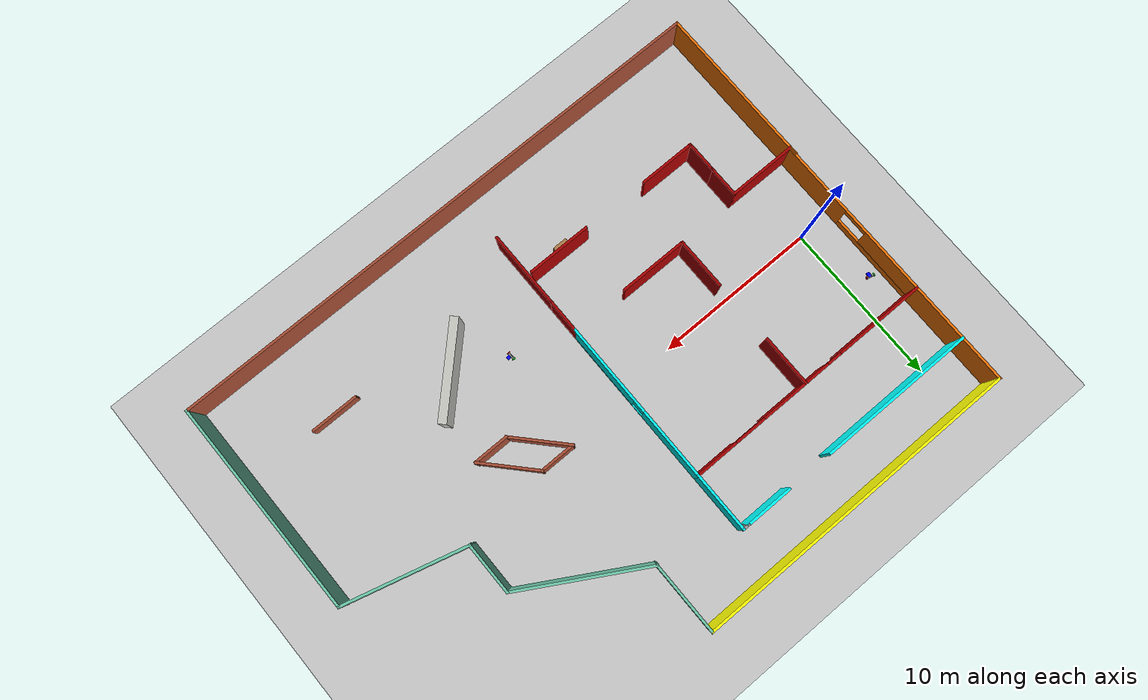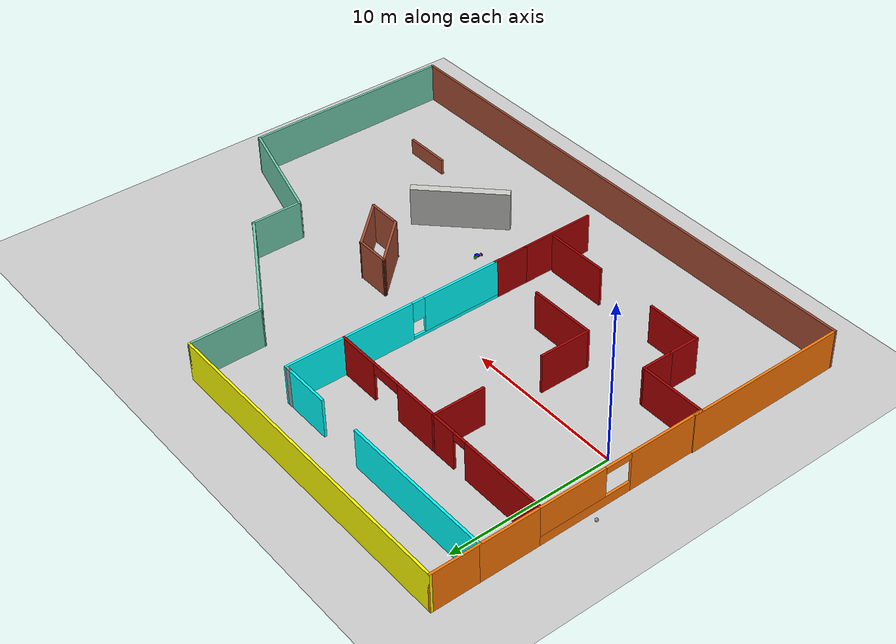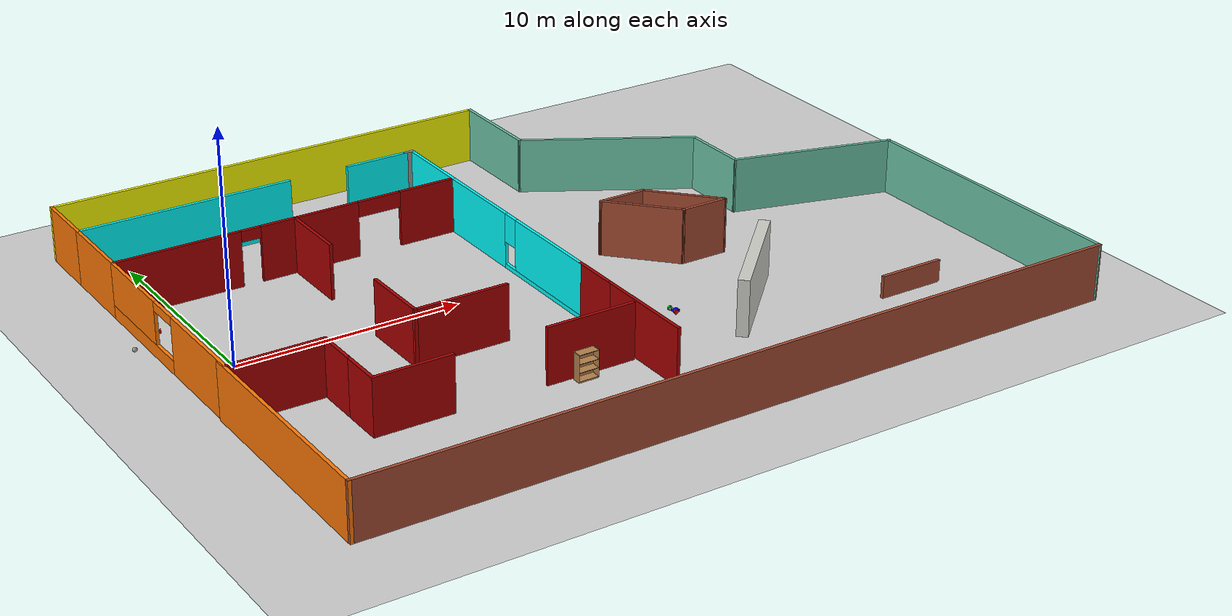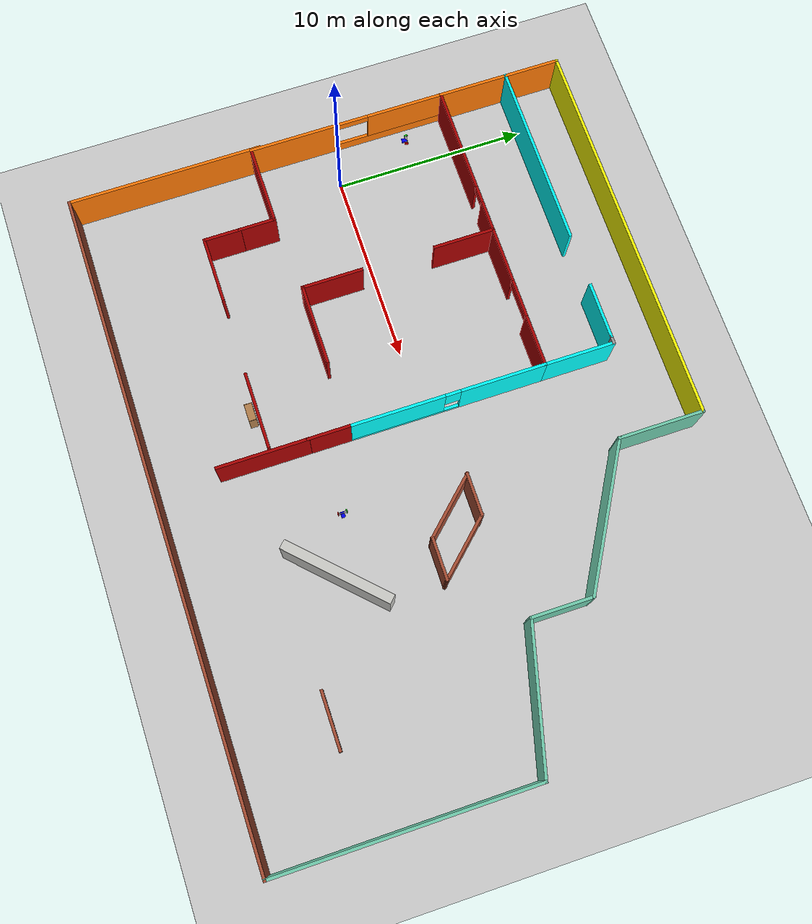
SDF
<sdf version="1.6">
 <world name="default">
  <plugin name="myhello" filename="libmyhello.so"/>
  <light name="sun" type="directional">
   <pose>0 0 10 0 -0 0</pose>
   <diffuse>0.8 0.8 0.8 1</diffuse>
   <specular>0.1 0.1 0.1 1</specular>
   <attenuation>
    <range>1000</range>
    <constant>0.9</constant>
    <linear>0.01</linear>
    <quadratic>0.001</quadratic>
   </attenuation>
   <direction>-0.5 0.5 -1</direction>
  </light>
  <model name="ground_plane">
   <static>1</static>
   <link name="link">
    <collision name="collision">
     <geometry><plane><normal>0 0 1</normal><size>100 100</size></plane></geometry>
     <surface><friction><ode><mu>100</mu><mu2>50</mu2></ode></friction></surface>
    </collision>
    <visual name="visual">
     <cast_shadows>0</cast_shadows>
     <geometry><plane><normal>0 0 1</normal><size>100 100</size></plane></geometry>
     <material>
      <script><uri>file://media/materials/scripts/gazebo.material</uri><name>Gazebo/Grey</name></script>
     </material>
    </visual>
   </link>
  </model>
  <gravity>0 0 -9.8</gravity>
  <magnetic_field>6e-06 2.3e-05 -4.2e-05</magnetic_field>
  <atmosphere type="adiabatic"/>
  <physics name="default_physics" default="0" type="ode">
   <max_step_size>0.001</max_step_size>
   <real_time_factor>1</real_time_factor>
   <real_time_update_rate>1000</real_time_update_rate>
  </physics>
  <scene><ambient>0.4 0.4 0.4 1</ambient><background>0.7 0.7 0.7 1</background><shadows>1</shadows></scene>
  <spherical_coordinates>
   <surface_model>EARTH_WGS84</surface_model>
   <latitude_deg>0</latitude_deg>
   <longitude_deg>0</longitude_deg>
   <elevation>0</elevation>
   <heading_deg>0</heading_deg>
  </spherical_coordinates>
  <model name="dummy_robot1">
   <link name="link_0">
    <pose>-0.025 0.005 0 0 -0 0</pose>
    <inertial>
     <mass>1</mass>
     <inertia>
      <ixx>0.166667</ixx>
      <ixy>0</ixy>
      <ixz>0</ixz>
      <iyy>0.166667</iyy>
      <iyz>0</iyz>
      <izz>0.166667</izz>
     </inertia>
    </inertial>
    <visual name="visual">
     <geometry><box><size>0.1 0.4 0.1</size></box></geometry>
     <material>
      <lighting>1</lighting>
      <script><uri>file://media/materials/scripts/gazebo.material</uri><name>Gazebo/Grey</name></script>
      <shader type="pixel"><normal_map>__default__</normal_map></shader>
      <ambient>1 1 1 1</ambient>
      <diffuse>1 1 1 1</diffuse>
      <specular>0.01 0.01 0.01 1</specular>
      <emissive>0 0 0 1</emissive>
     </material>
    </visual>
    <collision name="collision">
     <geometry><box><size>0.1 0.4 0.1</size></box></geometry>
     <surface>
      <friction>
       <ode><mu>1</mu><mu2>1</mu2><fdir1>0 0 0</fdir1><slip1>0</slip1><slip2>0</slip2></ode>
       <torsional>
        <coefficient>1</coefficient>
        <patch_radius>0</patch_radius>
        <surface_radius>0</surface_radius>
        <use_patch_radius>1</use_patch_radius>
        <ode><slip>0</slip></ode>
       </torsional>
      </friction>
      <bounce><restitution_coefficient>0</restitution_coefficient><threshold>1e+06</threshold></bounce>
      <contact>
       <collide_without_contact>0</collide_without_contact>
       <collide_without_contact_bitmask>1</collide_without_contact_bitmask>
       <collide_bitmask>1</collide_bitmask>
       <ode>
        <soft_cfm>0</soft_cfm>
        <soft_erp>0.2</soft_erp>
        <kp>1e+13</kp>
        <kd>1</kd>
        <max_vel>0.01</max_vel>
        <min_depth>0</min_depth>
       </ode>
       <bullet>
        <split_impulse>1</split_impulse>
        <split_impulse_penetration_threshold>-0.01</split_impulse_penetration_threshold>
        <soft_cfm>0</soft_cfm>
        <soft_erp>0.2</soft_erp>
        <kp>1e+13</kp>
        <kd>1</kd>
       </bullet>
      </contact>
     </surface>
    </collision>
   </link>
   <link name="link_1">
    <pose>-0.025 -0.22 0 1.5708 -0 0</pose>
    <inertial>
     <mass>1</mass>
     <inertia><ixx>0.145833</ixx><ixy>0</ixy><ixz>0</ixz><iyy>0.145833</iyy><iyz>0</iyz><izz>0.125</izz></inertia>
    </inertial>
    <visual name="visual">
     <geometry><cylinder><radius>0.1</radius><length>0.05</length></cylinder></geometry>
     <material>
      <lighting>1</lighting>
      <script><uri>file://media/materials/scripts/gazebo.material</uri><name>Gazebo/Grey</name></script>
      <shader type="pixel"><normal_map>__default__</normal_map></shader>
      <ambient>1 0 0 1</ambient>
      <diffuse>1 0 0 1</diffuse>
      <specular>0.01 0.01 0.01 1</specular>
      <emissive>0 0 0 1</emissive>
     </material>
    </visual>
    <collision name="collision">
     <geometry><cylinder><radius>0.1</radius><length>0.05</length></cylinder></geometry>
     <surface>
      <friction>
       <ode><mu>1</mu><mu2>1</mu2><fdir1>0 0 0</fdir1><slip1>0</slip1><slip2>0</slip2></ode>
       <torsional>
        <coefficient>1</coefficient>
        <patch_radius>0</patch_radius>
        <surface_radius>0</surface_radius>
        <use_patch_radius>1</use_patch_radius>
        <ode><slip>0</slip></ode>
       </torsional>
      </friction>
      <bounce><restitution_coefficient>0</restitution_coefficient><threshold>1e+06</threshold></bounce>
      <contact>
       <collide_without_contact>0</collide_without_contact>
       <collide_without_contact_bitmask>1</collide_without_contact_bitmask>
       <collide_bitmask>1</collide_bitmask>
       <ode>
        <soft_cfm>0</soft_cfm>
        <soft_erp>0.2</soft_erp>
        <kp>1e+13</kp>
        <kd>1</kd>
        <max_vel>0.01</max_vel>
        <min_depth>0</min_depth>
       </ode>
       <bullet>
        <split_impulse>1</split_impulse>
        <split_impulse_penetration_threshold>-0.01</split_impulse_penetration_threshold>
        <soft_cfm>0</soft_cfm>
        <soft_erp>0.2</soft_erp>
        <kp>1e+13</kp>
        <kd>1</kd>
       </bullet>
      </contact>
     </surface>
    </collision>
   </link>
   <link name="link_1_clone">
    <pose>-0.025 0.23 0 1.5708 -0 0</pose>
    <inertial>
     <mass>1</mass>
     <inertia><ixx>0.145833</ixx><ixy>0</ixy><ixz>0</ixz><iyy>0.145833</iyy><iyz>0</iyz><izz>0.125</izz></inertia>
    </inertial>
    <visual name="visual">
     <geometry><cylinder><radius>0.1</radius><length>0.05</length></cylinder></geometry>
     <material>
      <lighting>1</lighting>
      <script><uri>file://media/materials/scripts/gazebo.material</uri><name>Gazebo/Grey</name></script>
      <shader type="pixel"><normal_map>__default__</normal_map></shader>
      <ambient>0 1 0 1</ambient>
      <diffuse>0 1 0 1</diffuse>
      <specular>0.01 0.01 0.01 1</specular>
      <emissive>0 0 0 1</emissive>
     </material>
    </visual>
    <collision name="collision">
     <geometry><cylinder><radius>0.1</radius><length>0.05</length></cylinder></geometry>
     <surface>
      <friction>
       <ode><mu>1</mu><mu2>1</mu2><fdir1>0 0 0</fdir1><slip1>0</slip1><slip2>0</slip2></ode>
       <torsional>
        <coefficient>1</coefficient>
        <patch_radius>0</patch_radius>
        <surface_radius>0</surface_radius>
        <use_patch_radius>1</use_patch_radius>
        <ode><slip>0</slip></ode>
       </torsional>
      </friction>
      <bounce><restitution_coefficient>0</restitution_coefficient><threshold>1e+06</threshold></bounce>
      <contact>
       <collide_without_contact>0</collide_without_contact>
       <collide_without_contact_bitmask>1</collide_without_contact_bitmask>
       <collide_bitmask>1</collide_bitmask>
       <ode>
        <soft_cfm>0</soft_cfm>
        <soft_erp>0.2</soft_erp>
        <kp>1e+13</kp>
        <kd>1</kd>
        <max_vel>0.01</max_vel>
        <min_depth>0</min_depth>
       </ode>
       <bullet>
        <split_impulse>1</split_impulse>
        <split_impulse_penetration_threshold>-0.01</split_impulse_penetration_threshold>
        <soft_cfm>0</soft_cfm>
        <soft_erp>0.2</soft_erp>
        <kp>1e+13</kp>
        <kd>1</kd>
       </bullet>
      </contact>
     </surface>
    </collision>
   </link>
   <link name="link_2">
    <pose>0.075 -0.015 0 0 -0 0</pose>
    <inertial>
     <mass>1</mass>
     <inertia>
      <ixx>0.166667</ixx>
      <ixy>0</ixy>
      <ixz>0</ixz>
      <iyy>0.166667</iyy>
      <iyz>0</iyz>
      <izz>0.166667</izz>
     </inertia>
    </inertial>
    <visual name="visual">
     <geometry><box><size>0.3 0.2 0.1</size></box></geometry>
     <material>
      <lighting>1</lighting>
      <script><uri>file://media/materials/scripts/gazebo.material</uri><name>Gazebo/Grey</name></script>
      <shader type="pixel"><normal_map>__default__</normal_map></shader>
      <ambient>0 0 1 1</ambient>
      <diffuse>0 0 1 1</diffuse>
      <specular>0.01 0.01 0.01 1</specular>
      <emissive>0 0 0 1</emissive>
     </material>
    </visual>
    <collision name="collision">
     <geometry><box><size>0.3 0.2 0.1</size></box></geometry>
     <surface>
      <friction>
       <ode><mu>1</mu><mu2>1</mu2><fdir1>0 0 0</fdir1><slip1>0</slip1><slip2>0</slip2></ode>
       <torsional>
        <coefficient>1</coefficient>
        <patch_radius>0</patch_radius>
        <surface_radius>0</surface_radius>
        <use_patch_radius>1</use_patch_radius>
        <ode><slip>0</slip></ode>
       </torsional>
      </friction>
      <bounce><restitution_coefficient>0</restitution_coefficient><threshold>1e+06</threshold></bounce>
      <contact>
       <collide_without_contact>0</collide_without_contact>
       <collide_without_contact_bitmask>1</collide_without_contact_bitmask>
       <collide_bitmask>1</collide_bitmask>
       <ode>
        <soft_cfm>0</soft_cfm>
        <soft_erp>0.2</soft_erp>
        <kp>1e+13</kp>
        <kd>1</kd>
        <max_vel>0.01</max_vel>
        <min_depth>0</min_depth>
       </ode>
       <bullet>
        <split_impulse>1</split_impulse>
        <split_impulse_penetration_threshold>-0.01</split_impulse_penetration_threshold>
        <soft_cfm>0</soft_cfm>
        <soft_erp>0.2</soft_erp>
        <kp>1e+13</kp>
        <kd>1</kd>
       </bullet>
      </contact>
     </surface>
    </collision>
   </link>
   <joint name="link_0_JOINT_0" type="revolute">
    <parent>link_0</parent>
    <child>link_1</child>
    <axis>
     <xyz>0 0 1</xyz>
     <use_parent_model_frame>0</use_parent_model_frame>
     <limit>
      <lower>-1.79769e+308</lower>
      <upper>1.79769e+308</upper>
      <effort>-1</effort>
      <velocity>-1</velocity>
     </limit>
     <dynamics>
      <spring_reference>0</spring_reference>
      <spring_stiffness>0</spring_stiffness>
      <damping>0</damping>
     </dynamics>
    </axis>
    <physics>
     <ode><limit><cfm>0</cfm><erp>0.2</erp></limit><suspension><cfm>0</cfm><erp>0.2</erp></suspension></ode>
    </physics>
   </joint>
   <joint name="link_0_JOINT_1" type="revolute">
    <parent>link_0</parent>
    <child>link_1_clone</child>
    <axis>
     <xyz>0 0 1</xyz>
     <use_parent_model_frame>0</use_parent_model_frame>
     <limit>
      <lower>-1.79769e+308</lower>
      <upper>1.79769e+308</upper>
      <effort>-1</effort>
      <velocity>-1</velocity>
     </limit>
     <dynamics>
      <spring_reference>0</spring_reference>
      <spring_stiffness>0</spring_stiffness>
      <damping>0</damping>
     </dynamics>
    </axis>
    <physics>
     <ode><limit><cfm>0</cfm><erp>0.2</erp></limit><suspension><cfm>0</cfm><erp>0.2</erp></suspension></ode>
    </physics>
   </joint>
   <joint name="link_0_JOINT_4" type="fixed">
    <parent>link_0</parent>
    <child>link_2</child>
    <physics>
     <ode><limit><cfm>0</cfm><erp>0.2</erp></limit><suspension><cfm>0</cfm><erp>0.2</erp></suspension></ode>
    </physics>
   </joint>
   <static>0</static>
   <pose>-1.48633 4.15691 0.094895 -3.14159 0.20566 -1.78321</pose>
  </model>
  <model name="Building">
   <pose>14.9611 -0.51159 0 0 -0 0</pose>
   <link name="Wall_11">
    <pose>-17.1231 1.60417 0 0 -0 1.5708</pose>
    <visual name="Wall_11_Visual_0">
     <pose>-2.8644 0 1.25 0 -0 0</pose>
     <geometry><box><size>4.7712 0.15 2.5</size></box></geometry>
     <material>
      <script><uri>file://media/materials/scripts/gazebo.material</uri><name>Gazebo/Grey</name></script>
      <ambient>0.996078 0.47451 0.0196078 1</ambient>
     </material>
     <meta><layer>0</layer></meta>
    </visual>
    <collision name="Wall_11_Collision_0">
     <geometry><box><size>4.7712 0.15 2.5</size></box></geometry>
     <pose>-2.8644 0 1.25 0 -0 0</pose>
    </collision>
    <visual name="Wall_11_Visual_1">
     <pose>2.3856 0 0.3 0 -0 0</pose>
     <geometry><box><size>5.7288 0.15 0.6</size></box></geometry>
     <material>
      <script><uri>file://media/materials/scripts/gazebo.material</uri><name>Gazebo/Grey</name></script>
      <ambient>0.996078 0.47451 0.0196078 1</ambient>
     </material>
     <meta><layer>0</layer></meta>
    </visual>
    <collision name="Wall_11_Collision_1">
     <geometry><box><size>5.7288 0.15 0.6</size></box></geometry>
     <pose>2.3856 0 0.3 0 -0 0</pose>
    </collision>
    <visual name="Wall_11_Visual_2">
     <pose>3.1856 0 1.55 0 -0 0</pose>
     <geometry><box><size>4.1288 0.15 1.9</size></box></geometry>
     <material>
      <script><uri>file://media/materials/scripts/gazebo.material</uri><name>Gazebo/Grey</name></script>
      <ambient>0.996078 0.47451 0.0196078 1</ambient>
     </material>
     <meta><layer>0</layer></meta>
    </visual>
    <collision name="Wall_11_Collision_2">
     <geometry><box><size>4.1288 0.15 1.9</size></box></geometry>
     <pose>3.1856 0 1.55 0 -0 0</pose>
    </collision>
    <visual name="Wall_11_Visual_3">
     <pose>0.321197 0 2.3 0 -0 0</pose>
     <geometry><box><size>1.6 0.15 0.4</size></box></geometry>
     <material>
      <script><uri>file://media/materials/scripts/gazebo.material</uri><name>Gazebo/Grey</name></script>
      <ambient>0.996078 0.47451 0.0196078 1</ambient>
     </material>
     <meta><layer>0</layer></meta>
    </visual>
    <collision name="Wall_11_Collision_3">
     <geometry><box><size>1.6 0.15 0.4</size></box></geometry>
     <pose>0.321197 0 2.3 0 -0 0</pose>
    </collision>
   </link>
   <link name="Wall_12">
    <pose>-13.073 6.77928 0 0 -0 2.8e-05</pose>
    <visual name="Wall_12_Visual_0">
     <pose>-1.29124 0 1.25 0 -0 0</pose>
     <geometry><box><size>5.66751 0.15 2.5</size></box></geometry>
     <material>
      <script><uri>file://media/materials/scripts/gazebo.material</uri><name>Gazebo/Grey</name></script>
      <ambient>0.666667 0 0 1</ambient>
     </material>
     <meta><layer>0</layer></meta>
    </visual>
    <collision name="Wall_12_Collision_0">
     <geometry><box><size>5.66751 0.15 2.5</size></box></geometry>
     <pose>-1.29124 0 1.25 0 -0 0</pose>
    </collision>
    <visual name="Wall_12_Visual_1">
     <pose>3.28376 0 1.25 0 -0 0</pose>
     <geometry><box><size>1.68249 0.15 2.5</size></box></geometry>
     <material>
      <script><uri>file://media/materials/scripts/gazebo.material</uri><name>Gazebo/Grey</name></script>
      <ambient>0.666667 0 0 1</ambient>
     </material>
     <meta><layer>0</layer></meta>
    </visual>
    <collision name="Wall_12_Collision_1">
     <geometry><box><size>1.68249 0.15 2.5</size></box></geometry>
     <pose>3.28376 0 1.25 0 -0 0</pose>
    </collision>
    <visual name="Wall_12_Visual_2">
     <pose>1.99251 0 2.25 0 -0 0</pose>
     <geometry><box><size>0.9 0.15 0.5</size></box></geometry>
     <material>
      <script><uri>file://media/materials/scripts/gazebo.material</uri><name>Gazebo/Grey</name></script>
      <ambient>0.666667 0 0 1</ambient>
     </material>
     <meta><layer>0</layer></meta>
    </visual>
    <collision name="Wall_12_Collision_2">
     <geometry><box><size>0.9 0.15 0.5</size></box></geometry>
     <pose>1.99251 0 2.25 0 -0 0</pose>
    </collision>
   </link>
   <link name="Wall_13">
    <collision name="Wall_13_Collision">
     <geometry><box><size>3.25 0.15 2.5</size></box></geometry>
     <pose>0 0 1.25 0 -0 0</pose>
    </collision>
    <visual name="Wall_13_Visual">
     <pose>0 0 1.25 0 -0 0</pose>
     <geometry><box><size>3.25 0.15 2.5</size></box></geometry>
     <material>
      <script><uri>file://media/materials/scripts/gazebo.material</uri><name>Gazebo/Grey</name></script>
      <ambient>0.666667 0 0 1</ambient>
     </material>
     <meta><layer>0</layer></meta>
    </visual>
    <pose>-9.02283 5.2294 0 0 0 -1.5708</pose>
   </link>
   <link name="Wall_145">
    <collision name="Wall_145_Collision">
     <geometry><box><size>3.25 0.15 2.5</size></box></geometry>
     <pose>0 0 1.25 0 -0 0</pose>
    </collision>
    <visual name="Wall_145_Visual">
     <pose>0 0 1.25 0 -0 0</pose>
     <geometry><box><size>3.25 0.15 2.5</size></box></geometry>
     <material>
      <script><uri>file://media/materials/scripts/gazebo.material</uri><name>Gazebo/Grey</name></script>
      <ambient>0.666667 0 0 1</ambient>
     </material>
     <meta><layer>0</layer></meta>
    </visual>
    <pose>-9.02283 -1.7706 0 0 -0 1.5708</pose>
   </link>
   <link name="Wall_15">
    <pose>-5.22283 6.7794 0 0 -0 0</pose>
    <visual name="Wall_15_Visual_0">
     <pose>-2.37184 0 1.25 0 -0 0</pose>
     <geometry><box><size>3.00631 0.15 2.5</size></box></geometry>
     <material>
      <script><uri>file://media/materials/scripts/gazebo.material</uri><name>Gazebo/Grey</name></script>
      <ambient>0.666667 0 0 1</ambient>
     </material>
     <meta><layer>0</layer></meta>
    </visual>
    <collision name="Wall_15_Collision_0">
     <geometry><box><size>3.00631 0.15 2.5</size></box></geometry>
     <pose>-2.37184 0 1.25 0 -0 0</pose>
    </collision>
    <visual name="Wall_15_Visual_1">
     <pose>2.50316 0 1.25 0 -0 0</pose>
     <geometry><box><size>2.74369 0.15 2.5</size></box></geometry>
     <material>
      <script><uri>file://media/materials/scripts/gazebo.material</uri><name>Gazebo/Grey</name></script>
      <ambient>0.666667 0 0 1</ambient>
     </material>
     <meta><layer>0</layer></meta>
    </visual>
    <collision name="Wall_15_Collision_1">
     <geometry><box><size>2.74369 0.15 2.5</size></box></geometry>
     <pose>2.50316 0 1.25 0 -0 0</pose>
    </collision>
    <visual name="Wall_15_Visual_2">
     <pose>0.131312 0 2.15 0 -0 0</pose>
     <geometry><box><size>2 0.15 0.7</size></box></geometry>
     <material>
      <script><uri>file://media/materials/scripts/gazebo.material</uri><name>Gazebo/Grey</name></script>
      <ambient>0.666667 0 0 1</ambient>
     </material>
     <meta><layer>0</layer></meta>
    </visual>
    <collision name="Wall_15_Collision_2">
     <geometry><box><size>2 0.15 0.7</size></box></geometry>
     <pose>0.131312 0 2.15 0 -0 0</pose>
    </collision>
   </link>
   <link name="Wall_16">
    <pose>-1.42283 1.7294 0 0 0 -1.5708</pose>
    <visual name="Wall_16_Visual_0">
     <pose>-2.89998 0 1.25 0 -0 0</pose>
     <geometry><box><size>4.45005 0.15 2.5</size></box></geometry>
     <material>
      <script><uri>file://media/materials/scripts/gazebo.material</uri><name>Gazebo/Grey</name></script>
      <ambient>0 1 1 1</ambient>
     </material>
     <meta><layer>0</layer></meta>
    </visual>
    <collision name="Wall_16_Collision_0">
     <geometry><box><size>4.45005 0.15 2.5</size></box></geometry>
     <pose>-2.89998 0 1.25 0 -0 0</pose>
    </collision>
    <visual name="Wall_16_Visual_1">
     <pose>2.22502 0 0.1 0 -0 0</pose>
     <geometry><box><size>5.79995 0.15 0.2</size></box></geometry>
     <material>
      <script><uri>file://media/materials/scripts/gazebo.material</uri><name>Gazebo/Grey</name></script>
      <ambient>0 1 1 1</ambient>
     </material>
     <meta><layer>0</layer></meta>
    </visual>
    <collision name="Wall_16_Collision_1">
     <geometry><box><size>5.79995 0.15 0.2</size></box></geometry>
     <pose>2.22502 0 0.1 0 -0 0</pose>
    </collision>
    <visual name="Wall_16_Visual_2">
     <pose>2.62502 0 1.35 0 -0 0</pose>
     <geometry><box><size>4.99995 0.15 2.3</size></box></geometry>
     <material>
      <script><uri>file://media/materials/scripts/gazebo.material</uri><name>Gazebo/Grey</name></script>
      <ambient>0 1 1 1</ambient>
     </material>
     <meta><layer>0</layer></meta>
    </visual>
    <collision name="Wall_16_Collision_2">
     <geometry><box><size>4.99995 0.15 2.3</size></box></geometry>
     <pose>2.62502 0 1.35 0 -0 0</pose>
    </collision>
    <visual name="Wall_16_Visual_3">
     <pose>-0.274954 0 1.85 0 -0 0</pose>
     <geometry><box><size>0.8 0.15 1.3</size></box></geometry>
     <material>
      <script><uri>file://media/materials/scripts/gazebo.material</uri><name>Gazebo/Grey</name></script>
      <ambient>0 1 1 1</ambient>
     </material>
     <meta><layer>0</layer></meta>
    </visual>
    <collision name="Wall_16_Collision_3">
     <geometry><box><size>0.8 0.15 1.3</size></box></geometry>
     <pose>-0.274954 0 1.85 0 -0 0</pose>
    </collision>
   </link>
   <link name="Wall_21">
    <collision name="Wall_21_Collision">
     <geometry><box><size>4.25 0.15 2.5</size></box></geometry>
     <pose>0 0 1.25 0 -0 0</pose>
    </collision>
    <visual name="Wall_21_Visual">
     <pose>0 0 1.25 0 -0 0</pose>
     <geometry><box><size>4.25 0.15 2.5</size></box></geometry>
     <material>
      <script><uri>file://media/materials/scripts/gazebo.material</uri><name>Gazebo/Grey</name></script>
      <ambient>0.666667 0 0 1</ambient>
     </material>
     <meta><layer>0</layer></meta>
    </visual>
    <pose>-15.073 -3.57071 0 0 -0 5.5e-05</pose>
   </link>
   <link name="Wall_22">
    <collision name="Wall_22_Collision">
     <geometry><box><size>2 0.15 2.5</size></box></geometry>
     <pose>0 0 1.25 0 -0 0</pose>
    </collision>
    <visual name="Wall_22_Visual">
     <pose>0 0 1.25 0 -0 0</pose>
     <geometry><box><size>2 0.15 2.5</size></box></geometry>
     <material>
      <script><uri>file://media/materials/scripts/gazebo.material</uri><name>Gazebo/Grey</name></script>
      <ambient>0.666667 0 0 1</ambient>
     </material>
     <meta><layer>0</layer></meta>
    </visual>
    <pose>-13.0228 -4.4956 0 0 0 -1.5708</pose>
   </link>
   <link name="Wall_24">
    <collision name="Wall_24_Collision">
     <geometry><box><size>2.25 0.15 2.5</size></box></geometry>
     <pose>0 0 1.25 0 -0 0</pose>
    </collision>
    <visual name="Wall_24_Visual">
     <pose>0 0 1.25 0 -0 0</pose>
     <geometry><box><size>2.25 0.15 2.5</size></box></geometry>
     <material>
      <script><uri>file://media/materials/scripts/gazebo.material</uri><name>Gazebo/Grey</name></script>
      <ambient>0.666667 0 0 1</ambient>
     </material>
     <meta><layer>0</layer></meta>
    </visual>
    <pose>-1.42283 -4.3706 0 0 -0 1.5708</pose>
   </link>
   <link name="Wall_26">
    <collision name="Wall_26_Collision">
     <geometry><box><size>3.75 0.15 2.5</size></box></geometry>
     <pose>0 0 1.25 0 -0 0</pose>
    </collision>
    <visual name="Wall_26_Visual">
     <pose>0 0 1.25 0 -0 0</pose>
     <geometry><box><size>3.75 0.15 2.5</size></box></geometry>
     <material>
      <script><uri>file://media/materials/scripts/gazebo.material</uri><name>Gazebo/Grey</name></script>
      <ambient>0.996078 0.47451 0.0196078 1</ambient>
     </material>
     <meta><layer>0</layer></meta>
    </visual>
    <pose>-17.1231 8.57917 0 0 -0 1.5708</pose>
   </link>
   <link name="Wall_28">
    <collision name="Wall_28_Collision">
     <geometry><box><size>0.5 0.15 2.5</size></box></geometry>
     <pose>0 0 1.25 0 -0 0</pose>
    </collision>
    <visual name="Wall_28_Visual">
     <pose>0 0 1.25 0 -0 0</pose>
     <geometry><box><size>0.5 0.15 2.5</size></box></geometry>
     <material>
      <script><uri>file://media/materials/scripts/gazebo.material</uri><name>Gazebo/Grey</name></script>
      <ambient>1 1 1 1</ambient>
     </material>
     <meta><layer>0</layer></meta>
    </visual>
    <pose>-1.59783 10.3794 0 0 -0 0</pose>
   </link>
   <link name="Wall_29">
    <collision name="Wall_29_Collision">
     <geometry><box><size>3.75 0.15 2.5</size></box></geometry>
     <pose>0 0 1.25 0 -0 0</pose>
    </collision>
    <visual name="Wall_29_Visual">
     <pose>0 0 1.25 0 -0 0</pose>
     <geometry><box><size>3.75 0.15 2.5</size></box></geometry>
     <material>
      <script><uri>file://media/materials/scripts/gazebo.material</uri><name>Gazebo/Grey</name></script>
      <ambient>0 1 1 1</ambient>
     </material>
     <meta><layer>0</layer></meta>
    </visual>
    <pose>-1.42283 8.5794 0 0 0 -1.5708</pose>
   </link>
   <link name="Wall_34">
    <collision name="Wall_34_Collision">
     <geometry><box><size>4.25 0.15 2.5</size></box></geometry>
     <pose>0 0 1.25 0 -0 0</pose>
    </collision>
    <visual name="Wall_34_Visual">
     <pose>0 0 1.25 0 -0 0</pose>
     <geometry><box><size>4.25 0.15 2.5</size></box></geometry>
     <material>
      <script><uri>file://media/materials/scripts/gazebo.material</uri><name>Gazebo/Grey</name></script>
      <ambient>0.666667 0 0 1</ambient>
     </material>
     <meta><layer>0</layer></meta>
    </visual>
    <pose>-6.97283 -3.3206 0 0 -0 0</pose>
   </link>
   <link name="Wall_37">
    <collision name="Wall_37_Collision">
     <geometry><box><size>2 0.15 2.5</size></box></geometry>
     <pose>0 0 1.25 0 -0 0</pose>
    </collision>
    <visual name="Wall_37_Visual">
     <pose>0 0 1.25 0 -0 0</pose>
     <geometry><box><size>2 0.15 2.5</size></box></geometry>
     <material>
      <script><uri>file://media/materials/scripts/gazebo.material</uri><name>Gazebo/Grey</name></script>
      <ambient>0.666667 0 0 1</ambient>
     </material>
     <meta><layer>0</layer></meta>
    </visual>
    <pose>-13.0228 -6.3456 0 0 0 -1.5708</pose>
   </link>
   <link name="Wall_38">
    <collision name="Wall_38_Collision">
     <geometry><box><size>3.5 0.15 2.5</size></box></geometry>
     <pose>0 0 1.25 0 -0 0</pose>
    </collision>
    <visual name="Wall_38_Visual">
     <pose>0 0 1.25 0 -0 0</pose>
     <geometry><box><size>3.5 0.15 2.5</size></box></geometry>
     <material>
      <script><uri>file://media/materials/scripts/gazebo.material</uri><name>Gazebo/Grey</name></script>
      <ambient>0.666667 0 0 1</ambient>
     </material>
     <meta><layer>0</layer></meta>
    </visual>
    <pose>-11.3478 -7.2706 0 0 -0 0</pose>
   </link>
   <link name="Wall_40">
    <collision name="Wall_40_Collision">
     <geometry><box><size>4.75 0.15 2.5</size></box></geometry>
     <pose>0 0 1.25 0 -0 0</pose>
    </collision>
    <visual name="Wall_40_Visual">
     <pose>0 0 1.25 0 -0 0</pose>
     <geometry><box><size>4.75 0.15 2.5</size></box></geometry>
     <material>
      <script><uri>file://media/materials/scripts/gazebo.material</uri><name>Gazebo/Grey</name></script>
      <ambient>0.666667 0 0 1</ambient>
     </material>
     <meta><layer>0</layer></meta>
    </visual>
    <pose>-1.42283 -7.7206 0 0 0 -1.5708</pose>
   </link>
   <link name="Wall_42">
    <collision name="Wall_42_Collision">
     <geometry><box><size>4 0.15 2.5</size></box></geometry>
     <pose>0 0 1.25 0 -0 0</pose>
    </collision>
    <visual name="Wall_42_Visual">
     <pose>0 0 1.25 0 -0 0</pose>
     <geometry><box><size>4 0.15 2.5</size></box></geometry>
     <material>
      <script><uri>file://media/materials/scripts/gazebo.material</uri><name>Gazebo/Grey</name></script>
      <ambient>0.666667 0 0 1</ambient>
     </material>
     <meta><layer>0</layer></meta>
    </visual>
    <pose>-3.59193 -7.33035 0 0 -0 0</pose>
   </link>
   <link name="Wall_44">
    <collision name="Wall_44_Collision">
     <geometry><box><size>10.25 0.15 2.5</size></box></geometry>
     <pose>0 0 1.25 0 -0 0</pose>
    </collision>
    <visual name="Wall_44_Visual">
     <pose>0 0 1.25 0 -0 0</pose>
     <geometry><box><size>10.25 0.15 2.5</size></box></geometry>
     <material>
      <script><uri>file://media/materials/scripts/gazebo.material</uri><name>Gazebo/Grey</name></script>
      <ambient>0.996078 0.47451 0.0196078 1</ambient>
     </material>
     <meta><layer>0</layer></meta>
    </visual>
    <pose>-17.1751 -8.17883 0 0 0 -1.5708</pose>
   </link>
   <link name="Wall_45">
    <collision name="Wall_45_Collision">
     <geometry><box><size>34.5 0.15 2.5</size></box></geometry>
     <pose>0 0 1.25 0 -0 0</pose>
    </collision>
    <visual name="Wall_45_Visual">
     <pose>0 0 1.25 0 -0 0</pose>
     <geometry><box><size>34.5 0.15 2.5</size></box></geometry>
     <material>
      <script><uri>file://media/materials/scripts/gazebo.material</uri><name>Gazebo/Bricks</name></script>
      <ambient>1 0.764706 0.305882 1</ambient>
     </material>
     <meta><layer>0</layer></meta>
    </visual>
    <pose>-0.000142 -13.2288 0 0 -0 0</pose>
   </link>
   <link name="Wall_51">
    <collision name="Wall_51_Collision">
     <geometry><box><size>9.75 0.15 2.5</size></box></geometry>
     <pose>0 0 1.25 0 -0 0</pose>
    </collision>
    <visual name="Wall_51_Visual">
     <pose>0 0 1.25 0 -0 0</pose>
     <geometry><box><size>9.75 0.15 2.5</size></box></geometry>
     <material>
      <script><uri>file://media/materials/scripts/gazebo.material</uri><name>Gazebo/Grey</name></script>
      <ambient>0 1 1 1</ambient>
     </material>
     <meta><layer>0</layer></meta>
    </visual>
    <pose>-12.323 10.3793 0 0 -0 2.3e-05</pose>
   </link>
   <link name="Wall_53">
    <collision name="Wall_53_Collision">
     <geometry><box><size>3 0.15 2.5</size></box></geometry>
     <pose>0 0 1.25 0 -0 0</pose>
    </collision>
    <visual name="Wall_53_Visual">
     <pose>0 0 1.25 0 -0 0</pose>
     <geometry><box><size>3 0.15 2.5</size></box></geometry>
     <material>
      <script><uri>file://media/materials/scripts/gazebo.material</uri><name>Gazebo/Grey</name></script>
      <ambient>0 1 1 1</ambient>
     </material>
     <meta><layer>0</layer></meta>
    </visual>
    <pose>-3.19783 10.3794 0 0 -0 3.14159</pose>
   </link>
   <link name="Wall_56">
    <collision name="Wall_56_Collision">
     <geometry><box><size>3 0.15 2.5</size></box></geometry>
     <pose>0 0 1.25 0 -0 0</pose>
    </collision>
    <visual name="Wall_56_Visual">
     <pose>0 0 1.25 0 -0 0</pose>
     <geometry><box><size>3 0.15 2.5</size></box></geometry>
     <material>
      <script><uri>file://media/materials/scripts/gazebo.material</uri><name>Gazebo/Grey</name></script>
      <ambient>0.996078 0.47451 0.0196078 1</ambient>
     </material>
     <meta><layer>0</layer></meta>
    </visual>
    <pose>-17.1231 11.8042 0 0 -0 1.5708</pose>
   </link>
   <link name="Wall_57">
    <collision name="Wall_57_Collision">
     <geometry><box><size>20.5 0.15 2.5</size></box></geometry>
     <pose>0 0 1.25 0 -0 0</pose>
    </collision>
    <visual name="Wall_57_Visual">
     <pose>0 0 1.25 0 -0 0</pose>
     <geometry><box><size>20.5 0.15 2.5</size></box></geometry>
     <material>
      <script><uri>file://media/materials/scripts/gazebo.material</uri><name>Gazebo/Grey</name></script>
      <ambient>1 1 0 1</ambient>
     </material>
     <meta><layer>0</layer></meta>
    </visual>
    <pose>-6.94814 13.2292 0 0 -0 0</pose>
   </link>
   <link name="Wall_58">
    <collision name="Wall_58_Collision">
     <geometry><box><size>4.5 0.15 2.5</size></box></geometry>
     <pose>0 0 1.25 0 -0 0</pose>
    </collision>
    <visual name="Wall_58_Visual">
     <pose>0 0 1.25 0 -0 0</pose>
     <geometry><box><size>4.5 0.15 2.5</size></box></geometry>
     <material>
      <script><uri>file://media/materials/scripts/gazebo.material</uri><name>Gazebo/Grey</name></script>
      <ambient>0.435294 0.796078 0.67451 1</ambient>
     </material>
     <meta><layer>0</layer></meta>
    </visual>
    <pose>3.22686 11.0542 0 0 0 -1.5708</pose>
   </link>
   <link name="Wall_59">
    <collision name="Wall_59_Collision">
     <geometry><box><size>8 0.15 2.5</size></box></geometry>
     <pose>0 0 1.25 0 -0 0</pose>
    </collision>
    <visual name="Wall_59_Visual">
     <pose>0 0 1.25 0 -0 0</pose>
     <geometry><box><size>8 0.15 2.5</size></box></geometry>
     <material>
      <script><uri>file://media/materials/scripts/gazebo.material</uri><name>Gazebo/Grey</name></script>
      <ambient>0.435294 0.796078 0.67451 1</ambient>
     </material>
     <meta><layer>0</layer></meta>
    </visual>
    <pose>6.62636 6.91667 0 0 0 -0.523554</pose>
   </link>
   <link name="Wall_60">
    <collision name="Wall_60_Collision">
     <geometry><box><size>3.25 0.15 2.5</size></box></geometry>
     <pose>0 0 1.25 0 -0 0</pose>
    </collision>
    <visual name="Wall_60_Visual">
     <pose>0 0 1.25 0 -0 0</pose>
     <geometry><box><size>3.25 0.15 2.5</size></box></geometry>
     <material>
      <script><uri>file://media/materials/scripts/gazebo.material</uri><name>Gazebo/Grey</name></script>
      <ambient>0.435294 0.796078 0.67451 1</ambient>
     </material>
     <meta><layer>0</layer></meta>
    </visual>
    <pose>10.0259 3.40417 0 0 0 -1.5708</pose>
   </link>
   <link name="Wall_61">
    <collision name="Wall_61_Collision">
     <geometry><box><size>7.5 0.15 2.5</size></box></geometry>
     <pose>0 0 1.25 0 -0 0</pose>
    </collision>
    <visual name="Wall_61_Visual">
     <pose>0 0 1.25 0 -0 0</pose>
     <geometry><box><size>7.5 0.15 2.5</size></box></geometry>
     <material>
      <script><uri>file://media/materials/scripts/gazebo.material</uri><name>Gazebo/Grey</name></script>
      <ambient>0.435294 0.796078 0.67451 1</ambient>
     </material>
     <meta><layer>0</layer></meta>
    </visual>
    <pose>13.5754 0.903172 0 0 0 -0.261777</pose>
   </link>
   <link name="Wall_63">
    <collision name="Wall_63_Collision">
     <geometry><box><size>5.84982 0.5 2.5</size></box></geometry>
     <pose>0 0 1.25 0 -0 0</pose>
    </collision>
    <visual name="Wall_63_Visual">
     <pose>0 0 1.25 0 -0 0</pose>
     <geometry><box><size>5.84982 0.5 2.5</size></box></geometry>
     <material>
      <script><uri>file://media/materials/scripts/gazebo.material</uri><name>Gazebo/CeilingTiled</name></script>
      <ambient>0.921569 0.807843 0.615686 1</ambient>
     </material>
     <meta><layer>0</layer></meta>
    </visual>
    <pose>5.15136 -6.04333 0 0 -0 0.785398</pose>
   </link>
   <link name="Wall_65">
    <collision name="Wall_65_Collision">
     <geometry><box><size>13.3312 0.15 2.5</size></box></geometry>
     <pose>0 0 1.25 0 -0 0</pose>
    </collision>
    <visual name="Wall_65_Visual">
     <pose>0 0 1.25 0 -0 0</pose>
     <geometry><box><size>13.3312 0.15 2.5</size></box></geometry>
     <material>
      <script><uri>file://media/materials/scripts/gazebo.material</uri><name>Gazebo/Grey</name></script>
      <ambient>0.435294 0.796078 0.67451 1</ambient>
     </material>
     <meta><layer>0</layer></meta>
    </visual>
    <pose>17.1499 -6.63833 0 0 0 -1.567</pose>
   </link>
   <link name="Wall_67">
    <collision name="Wall_67_Collision">
     <geometry><box><size>3 0.15 1</size></box></geometry>
     <pose>0 0 0.5 0 -0 0</pose>
    </collision>
    <visual name="Wall_67_Visual">
     <pose>0 0 0.5 0 -0 0</pose>
     <geometry><box><size>3 0.15 1</size></box></geometry>
     <material>
      <script><uri>file://media/materials/scripts/gazebo.material</uri><name>Gazebo/Bricks</name></script>
      <ambient>0.333333 1 0 1</ambient>
     </material>
     <meta><layer>0</layer></meta>
    </visual>
    <pose>11.4669 -8.41783 0 0 -0 0</pose>
   </link>
   <link name="Wall_71">
    <collision name="Wall_71_Collision">
     <geometry><box><size>2.25 0.15 2.5</size></box></geometry>
     <pose>0 0 1.25 0 -0 0</pose>
    </collision>
    <visual name="Wall_71_Visual">
     <pose>0 0 1.25 0 -0 0</pose>
     <geometry><box><size>2.25 0.15 2.5</size></box></geometry>
     <material>
      <script><uri>file://media/materials/scripts/gazebo.material</uri><name>Gazebo/Bricks</name></script>
      <ambient>1 1 1 1</ambient>
     </material>
     <meta><layer>0</layer></meta>
    </visual>
    <pose>6.07586 -1.27483 0 0 -0 0</pose>
   </link>
   <link name="Wall_72">
    <collision name="Wall_72_Collision">
     <geometry><box><size>3.68812 0.15 2.5</size></box></geometry>
     <pose>0 0 1.25 0 -0 0</pose>
    </collision>
    <visual name="Wall_72_Visual">
     <pose>0 0 1.25 0 -0 0</pose>
     <geometry><box><size>3.68812 0.15 2.5</size></box></geometry>
     <material>
      <script><uri>file://media/materials/scripts/gazebo.material</uri><name>Gazebo/Bricks</name></script>
      <ambient>1 1 1 1</ambient>
     </material>
     <meta><layer>0</layer></meta>
    </visual>
    <pose>5.91636 0.016172 0 0 -0 2.32361</pose>
   </link>
   <link name="Wall_73">
    <collision name="Wall_73_Collision">
     <geometry><box><size>2.25 0.15 2.5</size></box></geometry>
     <pose>0 0 1.25 0 -0 0</pose>
    </collision>
    <visual name="Wall_73_Visual">
     <pose>0 0 1.25 0 -0 0</pose>
     <geometry><box><size>2.25 0.15 2.5</size></box></geometry>
     <material>
      <script><uri>file://media/materials/scripts/gazebo.material</uri><name>Gazebo/Bricks</name></script>
      <ambient>1 1 1 1</ambient>
     </material>
     <meta><layer>0</layer></meta>
    </visual>
    <pose>3.65686 1.30717 0 0 -0 3.14159</pose>
   </link>
   <link name="Wall_75">
    <collision name="Wall_75_Collision">
     <geometry><box><size>3.68812 0.15 2.5</size></box></geometry>
     <pose>0 0 1.25 0 -0 0</pose>
    </collision>
    <visual name="Wall_75_Visual">
     <pose>0 0 1.25 0 -0 0</pose>
     <geometry><box><size>3.68812 0.15 2.5</size></box></geometry>
     <material>
      <script><uri>file://media/materials/scripts/gazebo.material</uri><name>Gazebo/Bricks</name></script>
      <ambient>1 1 1 1</ambient>
     </material>
     <meta><layer>0</layer></meta>
    </visual>
    <pose>3.81636 0.016172 0 0 0 -0.81798</pose>
   </link>
   <static>1</static>
  </model>
  <model name="bookshelf">
   <static>1</static>
   <link name="link">
    <inertial><mass>1</mass></inertial>
    <collision name="back">
     <pose>0 0.005 0.6 0 -0 0</pose>
     <geometry><box><size>0.9 0.01 1.2</size></box></geometry>
    </collision>
    <visual name="visual1">
     <pose>0 0.005 0.6 0 -0 0</pose>
     <geometry><box><size>0.9 0.01 1.2</size></box></geometry>
     <material>
      <script><uri>file://media/materials/scripts/gazebo.material</uri><name>Gazebo/Wood</name></script>
     </material>
    </visual>
    <collision name="left_side">
     <pose>0.45 -0.195 0.6 0 -0 0</pose>
     <geometry><box><size>0.02 0.4 1.2</size></box></geometry>
    </collision>
    <visual name="visual2">
     <pose>0.45 -0.195 0.6 0 -0 0</pose>
     <geometry><box><size>0.02 0.4 1.2</size></box></geometry>
     <material>
      <script><uri>file://media/materials/scripts/gazebo.material</uri><name>Gazebo/Wood</name></script>
     </material>
    </visual>
    <collision name="right_side">
     <pose>-0.45 -0.195 0.6 0 -0 0</pose>
     <geometry><box><size>0.02 0.4 1.2</size></box></geometry>
    </collision>
    <visual name="visual3">
     <pose>-0.45 -0.195 0.6 0 -0 0</pose>
     <geometry><box><size>0.02 0.4 1.2</size></box></geometry>
     <material>
      <script><uri>file://media/materials/scripts/gazebo.material</uri><name>Gazebo/Wood</name></script>
     </material>
    </visual>
    <collision name="bottom">
     <pose>0 -0.195 0.03 0 -0 0</pose>
     <geometry><box><size>0.88 0.4 0.06</size></box></geometry>
    </collision>
    <visual name="visual4">
     <pose>0 -0.195 0.03 0 -0 0</pose>
     <geometry><box><size>0.88 0.4 0.06</size></box></geometry>
     <material>
      <script><uri>file://media/materials/scripts/gazebo.material</uri><name>Gazebo/Wood</name></script>
     </material>
    </visual>
    <collision name="top">
     <pose>0 -0.195 1.19 0 -0 0</pose>
     <geometry><box><size>0.88 0.4 0.02</size></box></geometry>
    </collision>
    <visual name="visual5">
     <pose>0 -0.195 1.19 0 -0 0</pose>
     <geometry><box><size>0.88 0.4 0.02</size></box></geometry>
     <material>
      <script><uri>file://media/materials/scripts/gazebo.material</uri><name>Gazebo/Wood</name></script>
     </material>
    </visual>
    <collision name="low_shelf">
     <pose>0 -0.195 0.43 0 -0 0</pose>
     <geometry><box><size>0.88 0.4 0.02</size></box></geometry>
    </collision>
    <visual name="visual6">
     <pose>0 -0.195 0.43 0 -0 0</pose>
     <geometry><box><size>0.88 0.4 0.02</size></box></geometry>
     <material>
      <script><uri>file://media/materials/scripts/gazebo.material</uri><name>Gazebo/Wood</name></script>
     </material>
    </visual>
    <collision name="high_shelf">
     <pose>0 -0.195 0.8 0 -0 0</pose>
     <geometry><box><size>0.88 0.4 0.02</size></box></geometry>
    </collision>
    <visual name="visual7">
     <pose>0 -0.195 0.8 0 -0 0</pose>
     <geometry><box><size>0.88 0.4 0.02</size></box></geometry>
     <material>
      <script><uri>file://media/materials/scripts/gazebo.material</uri><name>Gazebo/Wood</name></script>
     </material>
    </visual>
   </link>
   <pose>10.9449 -7.99188 0 0 -0 0</pose>
  </model>
  <model name="dummy_robot2">
   <link name="link_0">
    <pose>-0.025 0.005 0 0 -0 0</pose>
    <inertial>
     <mass>1</mass>
     <inertia>
      <ixx>0.166667</ixx>
      <ixy>0</ixy>
      <ixz>0</ixz>
      <iyy>0.166667</iyy>
      <iyz>0</iyz>
      <izz>0.166667</izz>
     </inertia>
    </inertial>
    <visual name="visual">
     <geometry><box><size>0.1 0.4 0.1</size></box></geometry>
     <material>
      <lighting>1</lighting>
      <script><uri>file://media/materials/scripts/gazebo.material</uri><name>Gazebo/Grey</name></script>
      <shader type="pixel"><normal_map>__default__</normal_map></shader>
      <ambient>1 1 1 1</ambient>
      <diffuse>1 1 1 1</diffuse>
      <specular>0.01 0.01 0.01 1</specular>
      <emissive>0 0 0 1</emissive>
     </material>
    </visual>
    <collision name="collision">
     <geometry><box><size>0.1 0.4 0.1</size></box></geometry>
     <surface>
      <friction>
       <ode><mu>1</mu><mu2>1</mu2><fdir1>0 0 0</fdir1><slip1>0</slip1><slip2>0</slip2></ode>
       <torsional>
        <coefficient>1</coefficient>
        <patch_radius>0</patch_radius>
        <surface_radius>0</surface_radius>
        <use_patch_radius>1</use_patch_radius>
        <ode><slip>0</slip></ode>
       </torsional>
      </friction>
      <bounce><restitution_coefficient>0</restitution_coefficient><threshold>1e+06</threshold></bounce>
      <contact>
       <collide_without_contact>0</collide_without_contact>
       <collide_without_contact_bitmask>1</collide_without_contact_bitmask>
       <collide_bitmask>1</collide_bitmask>
       <ode>
        <soft_cfm>0</soft_cfm>
        <soft_erp>0.2</soft_erp>
        <kp>1e+13</kp>
        <kd>1</kd>
        <max_vel>0.01</max_vel>
        <min_depth>0</min_depth>
       </ode>
       <bullet>
        <split_impulse>1</split_impulse>
        <split_impulse_penetration_threshold>-0.01</split_impulse_penetration_threshold>
        <soft_cfm>0</soft_cfm>
        <soft_erp>0.2</soft_erp>
        <kp>1e+13</kp>
        <kd>1</kd>
       </bullet>
      </contact>
     </surface>
    </collision>
   </link>
   <link name="link_1">
    <pose>-0.025 -0.22 0 1.5708 -0 0</pose>
    <inertial>
     <mass>1</mass>
     <inertia><ixx>0.145833</ixx><ixy>0</ixy><ixz>0</ixz><iyy>0.145833</iyy><iyz>0</iyz><izz>0.125</izz></inertia>
    </inertial>
    <visual name="visual">
     <geometry><cylinder><radius>0.1</radius><length>0.05</length></cylinder></geometry>
     <material>
      <lighting>1</lighting>
      <script><uri>file://media/materials/scripts/gazebo.material</uri><name>Gazebo/Grey</name></script>
      <shader type="pixel"><normal_map>__default__</normal_map></shader>
      <ambient>1 0 0 1</ambient>
      <diffuse>1 0 0 1</diffuse>
      <specular>0.01 0.01 0.01 1</specular>
      <emissive>0 0 0 1</emissive>
     </material>
    </visual>
    <collision name="collision">
     <geometry><cylinder><radius>0.1</radius><length>0.05</length></cylinder></geometry>
     <surface>
      <friction>
       <ode><mu>1</mu><mu2>1</mu2><fdir1>0 0 0</fdir1><slip1>0</slip1><slip2>0</slip2></ode>
       <torsional>
        <coefficient>1</coefficient>
        <patch_radius>0</patch_radius>
        <surface_radius>0</surface_radius>
        <use_patch_radius>1</use_patch_radius>
        <ode><slip>0</slip></ode>
       </torsional>
      </friction>
      <bounce><restitution_coefficient>0</restitution_coefficient><threshold>1e+06</threshold></bounce>
      <contact>
       <collide_without_contact>0</collide_without_contact>
       <collide_without_contact_bitmask>1</collide_without_contact_bitmask>
       <collide_bitmask>1</collide_bitmask>
       <ode>
        <soft_cfm>0</soft_cfm>
        <soft_erp>0.2</soft_erp>
        <kp>1e+13</kp>
        <kd>1</kd>
        <max_vel>0.01</max_vel>
        <min_depth>0</min_depth>
       </ode>
       <bullet>
        <split_impulse>1</split_impulse>
        <split_impulse_penetration_threshold>-0.01</split_impulse_penetration_threshold>
        <soft_cfm>0</soft_cfm>
        <soft_erp>0.2</soft_erp>
        <kp>1e+13</kp>
        <kd>1</kd>
       </bullet>
      </contact>
     </surface>
    </collision>
   </link>
   <link name="link_1_clone">
    <pose>-0.025 0.23 0 1.5708 -0 0</pose>
    <inertial>
     <mass>1</mass>
     <inertia><ixx>0.145833</ixx><ixy>0</ixy><ixz>0</ixz><iyy>0.145833</iyy><iyz>0</iyz><izz>0.125</izz></inertia>
    </inertial>
    <visual name="visual">
     <geometry><cylinder><radius>0.1</radius><length>0.05</length></cylinder></geometry>
     <material>
      <lighting>1</lighting>
      <script><uri>file://media/materials/scripts/gazebo.material</uri><name>Gazebo/Grey</name></script>
      <shader type="pixel"><normal_map>__default__</normal_map></shader>
      <ambient>0 1 0 1</ambient>
      <diffuse>0 1 0 1</diffuse>
      <specular>0.01 0.01 0.01 1</specular>
      <emissive>0 0 0 1</emissive>
     </material>
    </visual>
    <collision name="collision">
     <geometry><cylinder><radius>0.1</radius><length>0.05</length></cylinder></geometry>
     <surface>
      <friction>
       <ode><mu>1</mu><mu2>1</mu2><fdir1>0 0 0</fdir1><slip1>0</slip1><slip2>0</slip2></ode>
       <torsional>
        <coefficient>1</coefficient>
        <patch_radius>0</patch_radius>
        <surface_radius>0</surface_radius>
        <use_patch_radius>1</use_patch_radius>
        <ode><slip>0</slip></ode>
       </torsional>
      </friction>
      <bounce><restitution_coefficient>0</restitution_coefficient><threshold>1e+06</threshold></bounce>
      <contact>
       <collide_without_contact>0</collide_without_contact>
       <collide_without_contact_bitmask>1</collide_without_contact_bitmask>
       <collide_bitmask>1</collide_bitmask>
       <ode>
        <soft_cfm>0</soft_cfm>
        <soft_erp>0.2</soft_erp>
        <kp>1e+13</kp>
        <kd>1</kd>
        <max_vel>0.01</max_vel>
        <min_depth>0</min_depth>
       </ode>
       <bullet>
        <split_impulse>1</split_impulse>
        <split_impulse_penetration_threshold>-0.01</split_impulse_penetration_threshold>
        <soft_cfm>0</soft_cfm>
        <soft_erp>0.2</soft_erp>
        <kp>1e+13</kp>
        <kd>1</kd>
       </bullet>
      </contact>
     </surface>
    </collision>
   </link>
   <link name="link_2">
    <pose>0.075 -0.015 0 0 -0 0</pose>
    <inertial>
     <mass>1</mass>
     <inertia>
      <ixx>0.166667</ixx>
      <ixy>0</ixy>
      <ixz>0</ixz>
      <iyy>0.166667</iyy>
      <iyz>0</iyz>
      <izz>0.166667</izz>
     </inertia>
    </inertial>
    <visual name="visual">
     <geometry><box><size>0.3 0.2 0.1</size></box></geometry>
     <material>
      <lighting>1</lighting>
      <script><uri>file://media/materials/scripts/gazebo.material</uri><name>Gazebo/Grey</name></script>
      <shader type="pixel"><normal_map>__default__</normal_map></shader>
      <ambient>0 0 1 1</ambient>
      <diffuse>0 0 1 1</diffuse>
      <specular>0.01 0.01 0.01 1</specular>
      <emissive>0 0 0 1</emissive>
     </material>
    </visual>
    <collision name="collision">
     <geometry><box><size>0.3 0.2 0.1</size></box></geometry>
     <surface>
      <friction>
       <ode><mu>1</mu><mu2>1</mu2><fdir1>0 0 0</fdir1><slip1>0</slip1><slip2>0</slip2></ode>
       <torsional>
        <coefficient>1</coefficient>
        <patch_radius>0</patch_radius>
        <surface_radius>0</surface_radius>
        <use_patch_radius>1</use_patch_radius>
        <ode><slip>0</slip></ode>
       </torsional>
      </friction>
      <bounce><restitution_coefficient>0</restitution_coefficient><threshold>1e+06</threshold></bounce>
      <contact>
       <collide_without_contact>0</collide_without_contact>
       <collide_without_contact_bitmask>1</collide_without_contact_bitmask>
       <collide_bitmask>1</collide_bitmask>
       <ode>
        <soft_cfm>0</soft_cfm>
        <soft_erp>0.2</soft_erp>
        <kp>1e+13</kp>
        <kd>1</kd>
        <max_vel>0.01</max_vel>
        <min_depth>0</min_depth>
       </ode>
       <bullet>
        <split_impulse>1</split_impulse>
        <split_impulse_penetration_threshold>-0.01</split_impulse_penetration_threshold>
        <soft_cfm>0</soft_cfm>
        <soft_erp>0.2</soft_erp>
        <kp>1e+13</kp>
        <kd>1</kd>
       </bullet>
      </contact>
     </surface>
    </collision>
   </link>
   <joint name="link_0_JOINT_0" type="revolute">
    <parent>link_0</parent>
    <child>link_1</child>
    <axis>
     <xyz>0 0 1</xyz>
     <use_parent_model_frame>0</use_parent_model_frame>
     <limit>
      <lower>-1.79769e+308</lower>
      <upper>1.79769e+308</upper>
      <effort>-1</effort>
      <velocity>-1</velocity>
     </limit>
     <dynamics>
      <spring_reference>0</spring_reference>
      <spring_stiffness>0</spring_stiffness>
      <damping>0</damping>
     </dynamics>
    </axis>
    <physics>
     <ode><limit><cfm>0</cfm><erp>0.2</erp></limit><suspension><cfm>0</cfm><erp>0.2</erp></suspension></ode>
    </physics>
   </joint>
   <joint name="link_0_JOINT_1" type="revolute">
    <parent>link_0</parent>
    <child>link_1_clone</child>
    <axis>
     <xyz>0 0 1</xyz>
     <use_parent_model_frame>0</use_parent_model_frame>
     <limit>
      <lower>-1.79769e+308</lower>
      <upper>1.79769e+308</upper>
      <effort>-1</effort>
      <velocity>-1</velocity>
     </limit>
     <dynamics>
      <spring_reference>0</spring_reference>
      <spring_stiffness>0</spring_stiffness>
      <damping>0</damping>
     </dynamics>
    </axis>
    <physics>
     <ode><limit><cfm>0</cfm><erp>0.2</erp></limit><suspension><cfm>0</cfm><erp>0.2</erp></suspension></ode>
    </physics>
   </joint>
   <joint name="link_0_JOINT_4" type="fixed">
    <parent>link_0</parent>
    <child>link_2</child>
    <physics>
     <ode><limit><cfm>0</cfm><erp>0.2</erp></limit><suspension><cfm>0</cfm><erp>0.2</erp></suspension></ode>
    </physics>
   </joint>
   <static>0</static>
   <pose>17.0242 -5.35318 0.094894 4e-06 0.205661 0.018774</pose>
  </model>
  <model name="my_ball">
   <link name="link_0">
    <inertial>
     <mass>1</mass>
     <inertia><ixx>0.1</ixx><ixy>0</ixy><ixz>0</ixz><iyy>0.1</iyy><iyz>0</iyz><izz>0.1</izz></inertia>
    </inertial>
    <visual name="visual">
     <geometry><sphere><radius>0.1</radius></sphere></geometry>
     <material>
      <lighting>1</lighting>
      <script><uri>file://media/materials/scripts/gazebo.material</uri><name>Gazebo/Grey</name></script>
      <shader type="pixel"><normal_map>__default__</normal_map></shader>
      <ambient>1 1 1 1</ambient>
      <diffuse>1 1 1 1</diffuse>
      <specular>1 1 1 1</specular>
      <emissive>1 1 1 1</emissive>
     </material>
    </visual>
    <collision name="collision">
     <geometry><sphere><radius>0.1</radius></sphere></geometry>
     <surface>
      <friction>
       <ode><mu>1</mu><mu2>1</mu2><fdir1>0 0 0</fdir1><slip1>0</slip1><slip2>0</slip2></ode>
       <torsional>
        <coefficient>1</coefficient>
        <patch_radius>0</patch_radius>
        <surface_radius>0</surface_radius>
        <use_patch_radius>1</use_patch_radius>
        <ode><slip>0</slip></ode>
       </torsional>
      </friction>
      <bounce><restitution_coefficient>0</restitution_coefficient><threshold>1e+06</threshold></bounce>
      <contact>
       <collide_without_contact>0</collide_without_contact>
       <collide_without_contact_bitmask>1</collide_without_contact_bitmask>
       <collide_bitmask>1</collide_bitmask>
       <ode>
        <soft_cfm>0</soft_cfm>
        <soft_erp>0.2</soft_erp>
        <kp>1e+13</kp>
        <kd>1</kd>
        <max_vel>0.01</max_vel>
        <min_depth>0</min_depth>
       </ode>
       <bullet>
        <split_impulse>1</split_impulse>
        <split_impulse_penetration_threshold>-0.01</split_impulse_penetration_threshold>
        <soft_cfm>0</soft_cfm>
        <soft_erp>0.2</soft_erp>
        <kp>1e+13</kp>
        <kd>1</kd>
       </bullet>
      </contact>
     </surface>
    </collision>
   </link>
   <static>0</static>
   <pose>-2.74121 3.22668 0.1 0 -0 0</pose>
  </model>
 </world>
</sdf>
